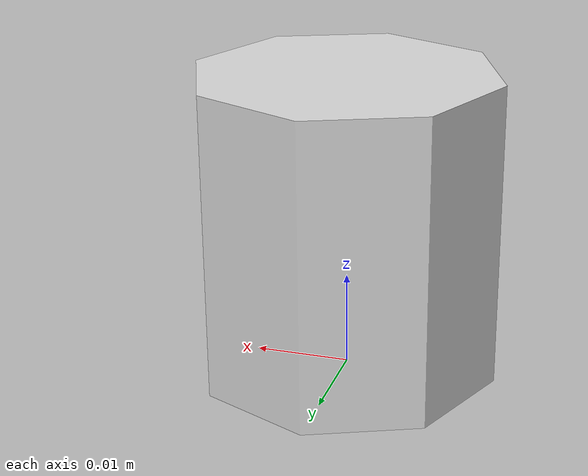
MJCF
<mujoco model="white_oct_cylinder">
  <compiler angle="radian" meshdir="assets" autolimits="true" />
  <option cone="elliptic" impratio="10" />
  <default>
    <default class="white_oct_cylinder">
      <default class="visual">
        <geom group="2" contype="0" conaffinity="0" />
      </default>
      <default class="collision">
        <geom group="3" condim="4" margin="0.001" />
      </default>
    </default>
  </default>
  <asset>
    <mesh name="white_oct_cylinder" file="oct_cylinder.obj"   />
  </asset>
  <worldbody>
    <body name="white_oct_cylinder_body" childclass="white_oct_cylinder">
      <geom type="mesh" class="visual" name="white_oct_cylinder_visual_geom" mesh="white_oct_cylinder" rgba="0.85 0.85 0.85 1" />
      <geom type="mesh" class="collision" name="white_oct_cylinder_collision_geom" mesh="white_oct_cylinder" friction="1.2 1.5 0.8" density="20" solimp="0.90 0.95" solref="0.004 1" />
      <joint type="free" name="white_oct_cylinder_joint" />
    </body>
  </worldbody>
</mujoco>
